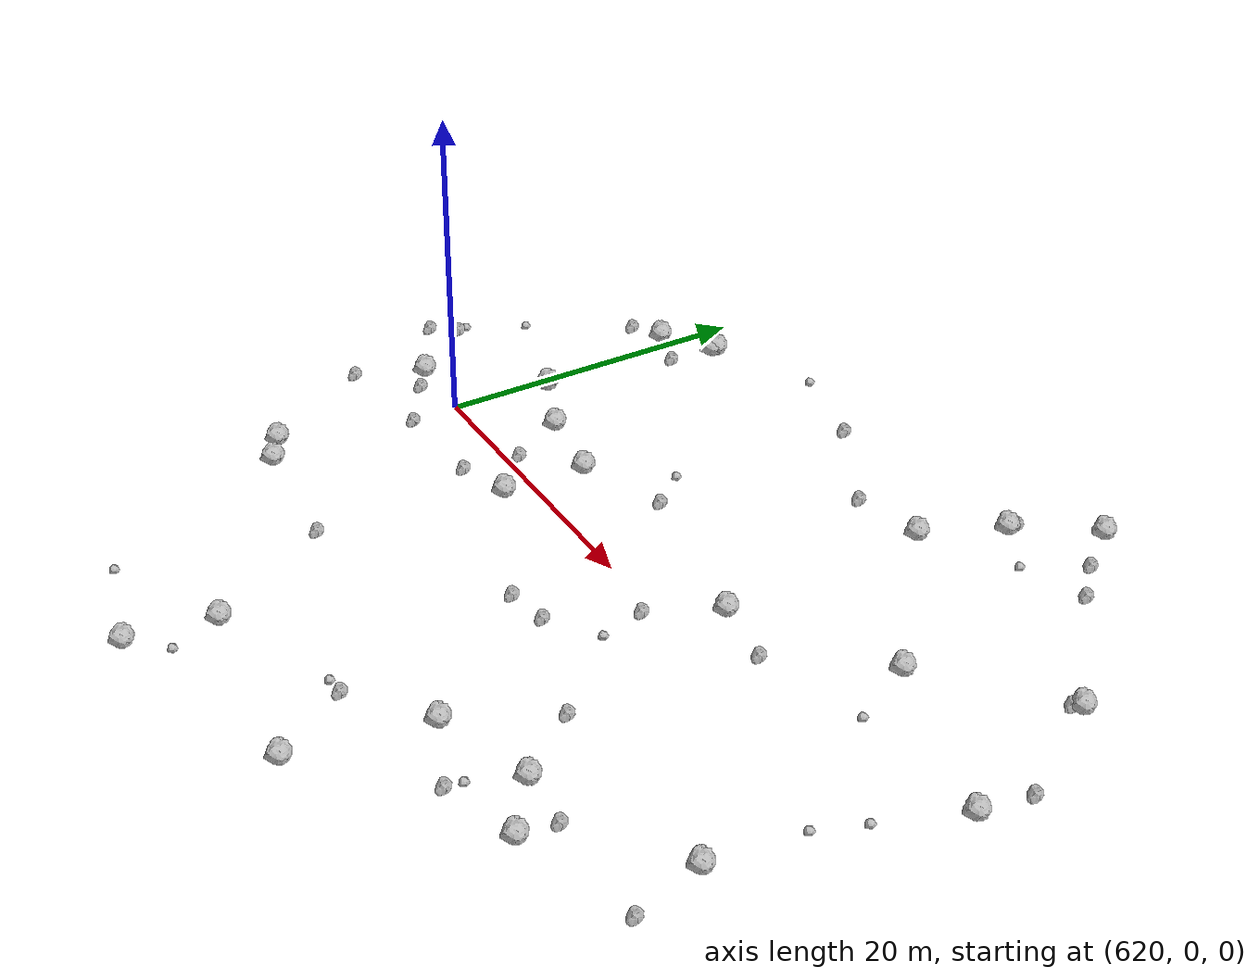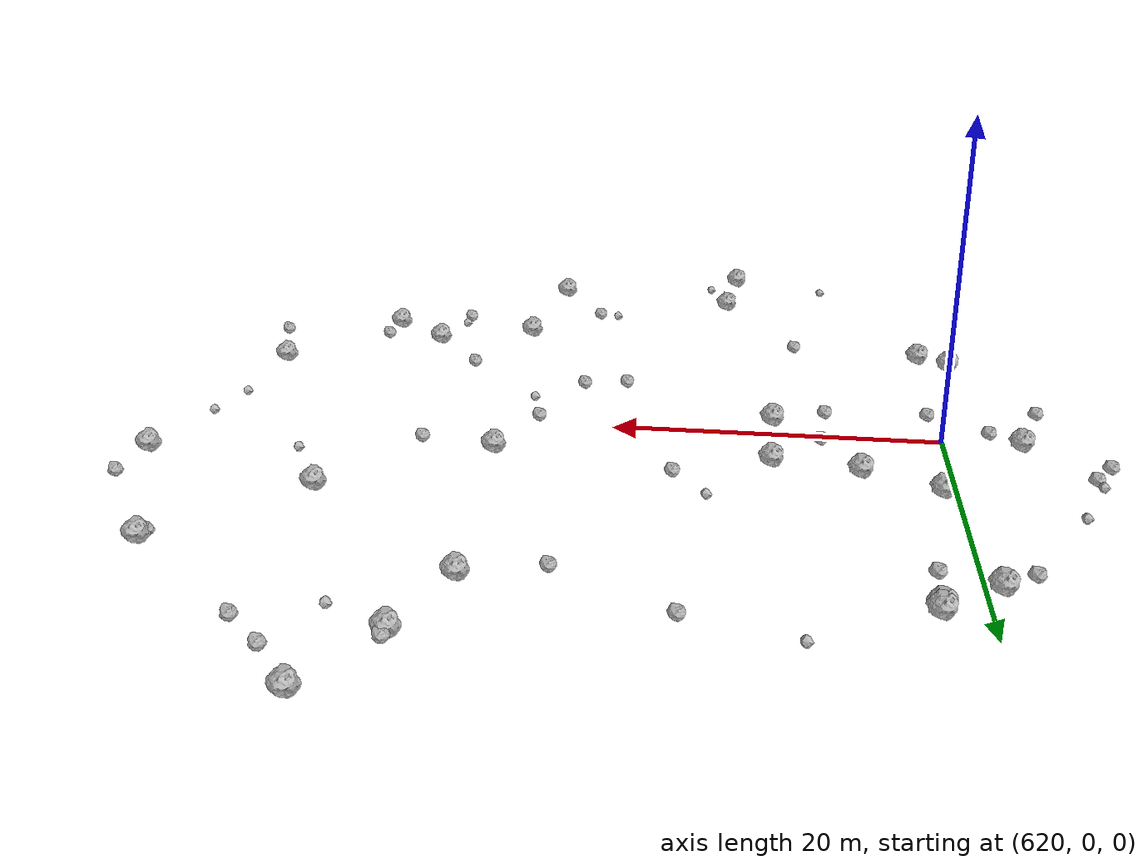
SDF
<sdf version="1.6">
 <world name="default">
  <include><uri>model://sun</uri></include>
  <model name="rock1_16_3">
   <include><uri>model://rock1</uri><pose>622.4388292178817 17.953380234101985 0.5 0 0 0</pose></include>
  </model>
  <model name="rock1_16_4">
   <include><uri>model://rock1</uri><pose>647.5639617284669 -14.793254335191197 0.5 0 0 0</pose></include>
  </model>
  <model name="rock1_16_5">
   <include><uri>model://rock1</uri><pose>620.7802512519281 6.237959686700933 0.5 0 0 0</pose></include>
  </model>
  <model name="rock1_16_6">
   <include><uri>model://rock1</uri><pose>619.159398120393 15.63174089514348 0.5 0 0 0</pose></include>
  </model>
  <model name="rock1_16_7">
   <include><uri>model://rock1</uri><pose>657.5601405331417 -15.480791248161312 0.5 0 0 0</pose></include>
  </model>
  <model name="rock1_16_8">
   <include><uri>model://rock1</uri><pose>622.3846461748301 17.622144103483834 0.5 0 0 0</pose></include>
  </model>
  <model name="rock1_16_9">
   <include><uri>model://rock1</uri><pose>656.1987331957281 9.024404664927339 0.5 0 0 0</pose></include>
  </model>
  <model name="rock1_16_10">
   <include><uri>model://rock1</uri><pose>646.1872950567587 17.119113960752152 0.5 0 0 0</pose></include>
  </model>
  <model name="rock1_16_11">
   <include><uri>model://rock1</uri><pose>667.5747675882207 5.514456916636725 0.5 0 0 0</pose></include>
  </model>
  <model name="rock1_16_12">
   <include><uri>model://rock1</uri><pose>663.6195913018962 15.457942737660183 0.5 0 0 0</pose></include>
  </model>
  <model name="rock1_16_13">
   <include><uri>model://rock1</uri><pose>663.9761434074601 -8.5505295939369 0.5 0 0 0</pose></include>
  </model>
  <model name="rock1_16_14">
   <include><uri>model://rock1</uri><pose>630.3338169855687 3.557323345824777 0.5 0 0 0</pose></include>
  </model>
  <model name="rock1_16_15">
   <include><uri>model://rock1</uri><pose>618.138175415555 -11.389709813448292 0.5 0 0 0</pose></include>
  </model>
  <model name="rock1_16_16">
   <include><uri>model://rock1</uri><pose>632.7891232290118 -26.927038639611137 0.5 0 0 0</pose></include>
  </model>
  <model name="rock1_16_17">
   <include><uri>model://rock1</uri><pose>615.3378528976151 0.13833523079830456 0.5 0 0 0</pose></include>
  </model>
  <model name="rock1_16_18">
   <include><uri>model://rock1</uri><pose>633.4791337803213 -21.49191200396946 0.5 0 0 0</pose></include>
  </model>
  <model name="rock1_16_19">
   <include><uri>model://rock1</uri><pose>620.0767005615961 -12.515883626798452 0.5 0 0 0</pose></include>
  </model>
  <model name="rock1_16_20">
   <include><uri>model://rock1</uri><pose>648.3570157881602 22.067509298353386 0.5 0 0 0</pose></include>
  </model>
  <model name="rock1_16_21">
   <include><uri>model://rock1</uri><pose>646.1398588794616 -23.28500725169671 0.5 0 0 0</pose></include>
  </model>
  <model name="rock1_16_22">
   <include><uri>model://rock1</uri><pose>630.2071239343301 -1.8290352638505851 0.5 0 0 0</pose></include>
  </model>
  <model name="rock1_16_23">
   <include><uri>model://rock1</uri><pose>651.5720931490496 26.694617018496622 0.5 0 0 0</pose></include>
  </model>
  <model name="rock1_16_24">
   <include><uri>model://rock1</uri><pose>653.9453888442555 -12.812103260127664 0.5 0 0 0</pose></include>
  </model>
  <model name="rock1_16_25">
   <include><uri>model://rock1</uri><pose>646.8952286093551 3.5144235911847233 0.5 0 0 0</pose></include>
  </model>
  <model name="rock1_16_26">
   <include><uri>model://rock1</uri><pose>625.2022811975307 4.371941747874551 0.5 0 0 0</pose></include>
  </model>
  <model name="rock2_16_0">
   <include><uri>model://rock2</uri><pose>622.1634547569048 14.68049414395395 0.3 0 0 0</pose></include>
  </model>
  <model name="rock2_16_1">
   <include><uri>model://rock2</uri><pose>627.3004126371337 0.7243555809762157 0.3 0 0 0</pose></include>
  </model>
  <model name="rock2_16_2">
   <include><uri>model://rock2</uri><pose>644.782313436543 -0.7601461244205119 0.3 0 0 0</pose></include>
  </model>
  <model name="rock2_16_3">
   <include><uri>model://rock2</uri><pose>628.5385449433945 -13.360699773389982 0.3 0 0 0</pose></include>
  </model>
  <model name="rock2_16_4">
   <include><uri>model://rock2</uri><pose>613.6521710790972 -4.06640124539177 0.3 0 0 0</pose></include>
  </model>
  <model name="rock2_16_5">
   <include><uri>model://rock2</uri><pose>610.7649450322734 2.7245804804511593 0.3 0 0 0</pose></include>
  </model>
  <model name="rock2_16_6">
   <include><uri>model://rock2</uri><pose>642.8785422847761 -18.36957419263105 0.3 0 0 0</pose></include>
  </model>
  <model name="rock2_16_7">
   <include><uri>model://rock2</uri><pose>665.4516395386622 -13.165832847755116 0.3 0 0 0</pose></include>
  </model>
  <model name="rock2_16_8">
   <include><uri>model://rock2</uri><pose>620.4963255441924 -3.200102793920948 0.3 0 0 0</pose></include>
  </model>
  <model name="rock2_16_9">
   <include><uri>model://rock2</uri><pose>667.9973074580118 8.86395739755946 0.3 0 0 0</pose></include>
  </model>
  <model name="rock2_16_10">
   <include><uri>model://rock2</uri><pose>611.9189103893439 4.275354537926667 0.3 0 0 0</pose></include>
  </model>
  <model name="rock2_16_11">
   <include><uri>model://rock2</uri><pose>648.4037899998281 22.69793106679856 0.3 0 0 0</pose></include>
  </model>
  <model name="rock2_16_12">
   <include><uri>model://rock2</uri><pose>617.0510040124962 -1.0151210781552962 0.3 0 0 0</pose></include>
  </model>
  <model name="rock2_16_13">
   <include><uri>model://rock2</uri><pose>650.5523024499347 -8.681616927158228 0.3 0 0 0</pose></include>
  </model>
  <model name="rock2_16_14">
   <include><uri>model://rock2</uri><pose>657.8396431286482 -13.109529186152248 0.3 0 0 0</pose></include>
  </model>
  <model name="rock2_16_15">
   <include><uri>model://rock2</uri><pose>663.2797746104591 15.004404495025156 0.3 0 0 0</pose></include>
  </model>
  <model name="rock2_16_16">
   <include><uri>model://rock2</uri><pose>639.7420547024898 -6.32336916966317 0.3 0 0 0</pose></include>
  </model>
  <model name="rock2_16_17">
   <include><uri>model://rock2</uri><pose>653.8448182450559 23.854289474132585 0.3 0 0 0</pose></include>
  </model>
  <model name="rock2_16_18">
   <include><uri>model://rock2</uri><pose>642.523122421141 -5.867690021343897 0.3 0 0 0</pose></include>
  </model>
  <model name="rock2_16_19">
   <include><uri>model://rock2</uri><pose>651.4127446923627 2.808599003325881 0.3 0 0 0</pose></include>
  </model>
  <model name="rock2_16_20">
   <include><uri>model://rock2</uri><pose>652.5345712886049 -16.95537639979071 0.3 0 0 0</pose></include>
  </model>
  <model name="rock2_16_21">
   <include><uri>model://rock2</uri><pose>636.0128987478714 5.628501368879782 0.3 0 0 0</pose></include>
  </model>
  <model name="rock2_16_22">
   <include><uri>model://rock2</uri><pose>617.3002214826396 14.524167118041987 0.3 0 0 0</pose></include>
  </model>
  <model name="rock2_16_23">
   <include><uri>model://rock2</uri><pose>634.9511203757345 19.576130546954424 0.3 0 0 0</pose></include>
  </model>
  <model name="rock2_16_24">
   <include><uri>model://rock2</uri><pose>626.8936022126722 -2.9154731593863445 0.3 0 0 0</pose></include>
  </model>
  <model name="rock2_16_25">
   <include><uri>model://rock2</uri><pose>656.0238537182977 21.78476127407815 0.3 0 0 0</pose></include>
  </model>
  <model name="rock2_16_26">
   <include><uri>model://rock2</uri><pose>641.6190388278748 16.12209643922337 0.3 0 0 0</pose></include>
  </model>
  <model name="rock3_16_0">
   <include><uri>model://rock3</uri><pose>664.4377139296686 -2.54602456028314 0.2 0 0 0</pose></include>
  </model>
  <model name="rock3_16_1">
   <include><uri>model://rock3</uri><pose>620.7512436651723 6.0307316691071975 0.2 0 0 0</pose></include>
  </model>
  <model name="rock3_16_2">
   <include><uri>model://rock3</uri><pose>645.4708493640919 -3.6451494408023315 0.2 0 0 0</pose></include>
  </model>
  <model name="rock3_16_3">
   <include><uri>model://rock3</uri><pose>633.9298039516925 7.977058708503392 0.2 0 0 0</pose></include>
  </model>
  <model name="rock3_16_4">
   <include><uri>model://rock3</uri><pose>626.1157857765568 -24.957946996060905 0.2 0 0 0</pose></include>
  </model>
  <model name="rock3_16_5">
   <include><uri>model://rock3</uri><pose>652.5662891976189 -15.834553323647176 0.2 0 0 0</pose></include>
  </model>
  <model name="rock3_16_6">
   <include><uri>model://rock3</uri><pose>658.439069171739 4.812224982059732 0.2 0 0 0</pose></include>
  </model>
  <model name="rock3_16_7">
   <include><uri>model://rock3</uri><pose>634.6942243357278 -24.74423761535339 0.2 0 0 0</pose></include>
  </model>
  <model name="rock3_16_8">
   <include><uri>model://rock3</uri><pose>613.4296581220624 8.520925326697444 0.2 0 0 0</pose></include>
  </model>
  <model name="rock3_16_9">
   <include><uri>model://rock3</uri><pose>611.6695441842494 4.957491299002555 0.2 0 0 0</pose></include>
  </model>
  <model name="rock3_16_10">
   <include><uri>model://rock3</uri><pose>665.5118440207435 0.39805339517630856 0.2 0 0 0</pose></include>
  </model>
  <model name="rock3_16_11">
   <include><uri>model://rock3</uri><pose>641.5249519520152 -18.3833220295418 0.2 0 0 0</pose></include>
  </model>
  <model name="rock3_16_12">
   <include><uri>model://rock3</uri><pose>651.7362651273208 20.3306306854235 0.2 0 0 0</pose></include>
  </model>
  <model name="rock3_16_13">
   <include><uri>model://rock3</uri><pose>628.859718190778 21.024301184946374 0.2 0 0 0</pose></include>
  </model>
 </world>
</sdf>
